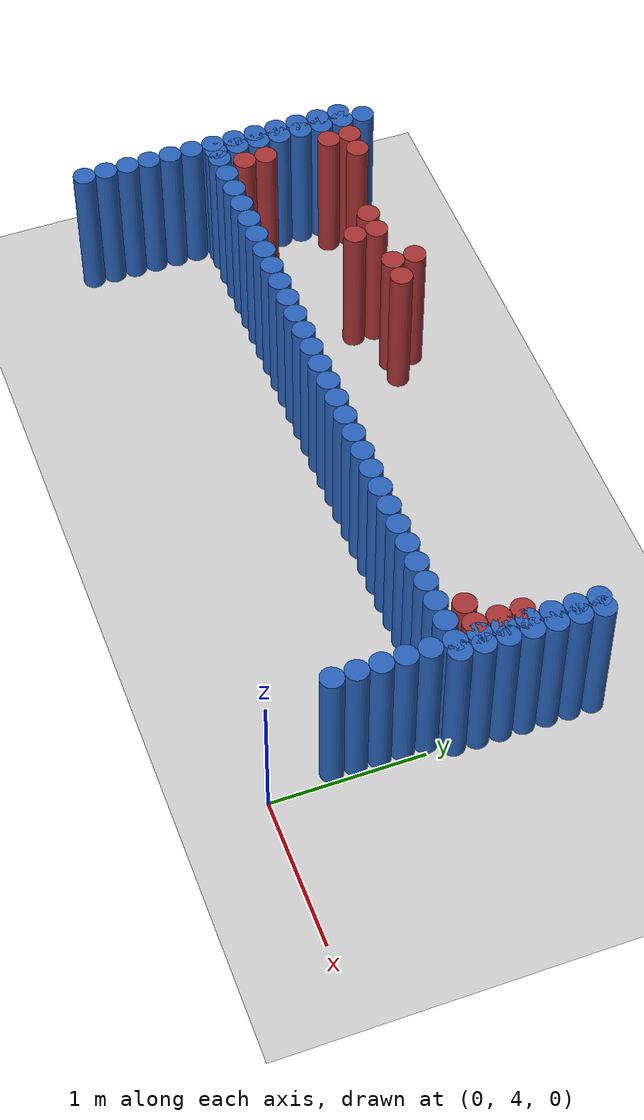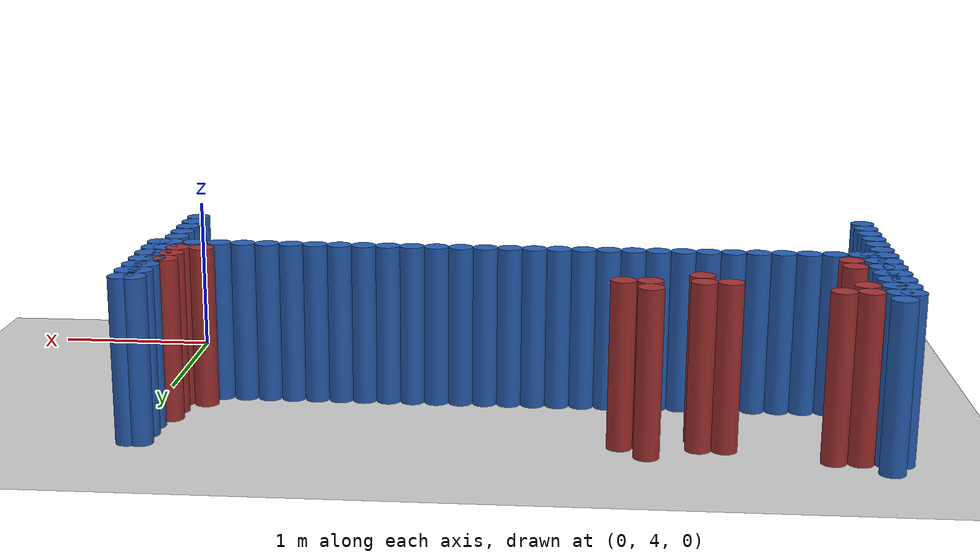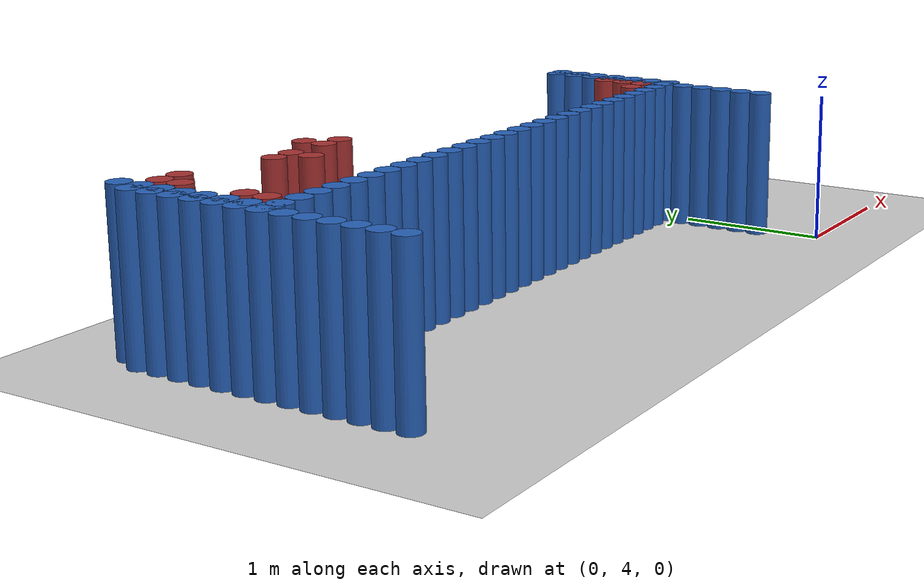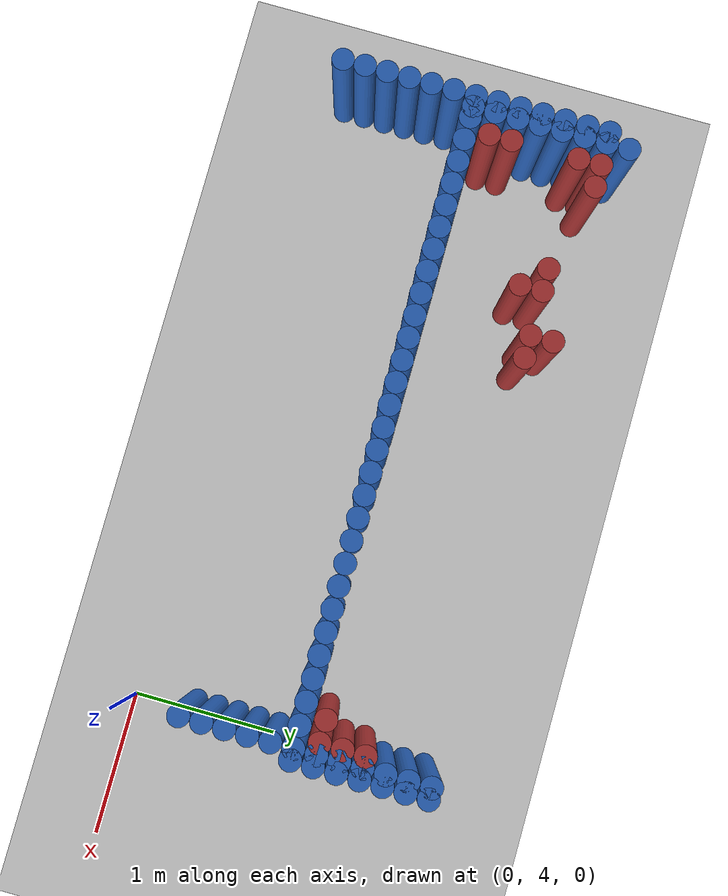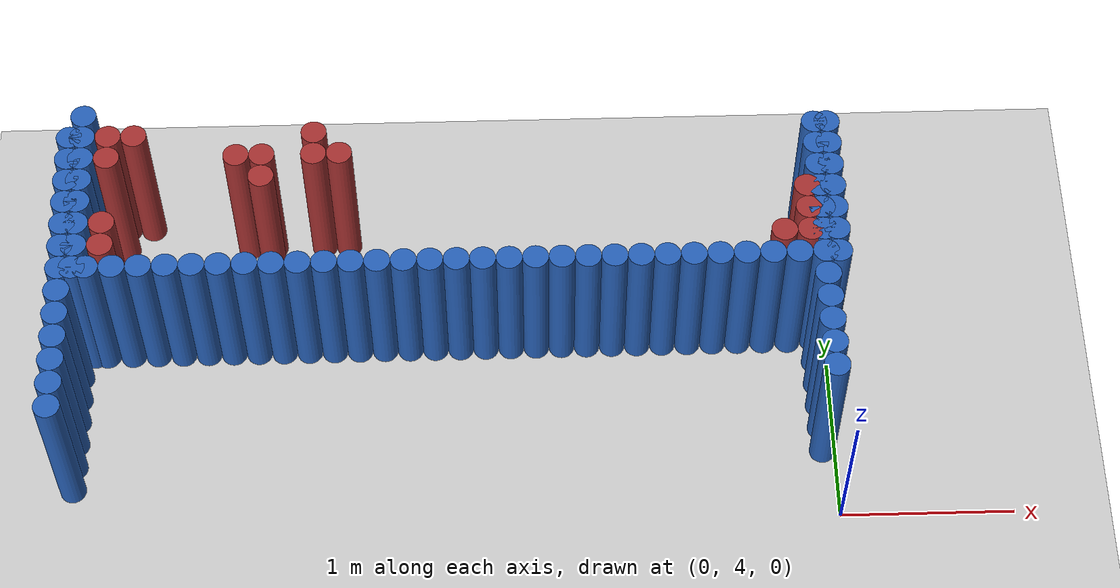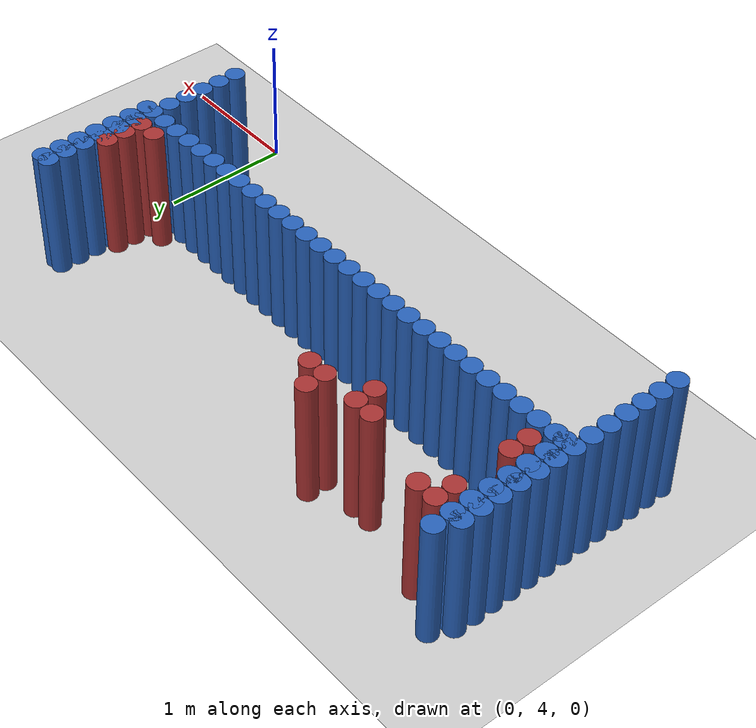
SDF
<sdf version="1.6">
 <world name="barn_world">
  <model name="ground_plane">
   <static>1</static>
   <link name="link">
    <collision name="collision">
     <geometry><plane><normal>0 0 1</normal><size>100 100</size></plane></geometry>
    </collision>
    <visual name="visual">
     <geometry><plane><normal>0 0 1</normal><size>100 100</size></plane></geometry>
     <material>
      <script><uri>file://media/materials/scripts/gazebo.material</uri><name>Gazebo/Grey</name></script>
     </material>
    </visual>
   </link>
  </model>
  <model name="unit_cylinder_85">
   <static>1</static>
   <pose>-4.4250 4.2750 0.5 0 0 0</pose>
   <link name="link">
    <collision name="collision">
     <geometry><cylinder><radius>0.075</radius><length>1</length></cylinder></geometry>
    </collision>
    <visual name="visual">
     <geometry><cylinder><radius>0.075</radius><length>1</length></cylinder></geometry>
     <material><ambient>0.152 0.379 0.72 1</ambient><diffuse>0.152 0.379 0.72 1</diffuse></material>
    </visual>
   </link>
  </model>
  <model name="unit_cylinder_86">
   <static>1</static>
   <pose>-0.0750 4.4250 0.5 0 0 0</pose>
   <link name="link">
    <collision name="collision">
     <geometry><cylinder><radius>0.075</radius><length>1</length></cylinder></geometry>
    </collision>
    <visual name="visual">
     <geometry><cylinder><radius>0.075</radius><length>1</length></cylinder></geometry>
     <material><ambient>0.152 0.379 0.72 1</ambient><diffuse>0.152 0.379 0.72 1</diffuse></material>
    </visual>
   </link>
  </model>
  <model name="unit_cylinder_87">
   <static>1</static>
   <pose>-4.4250 4.4250 0.5 0 0 0</pose>
   <link name="link">
    <collision name="collision">
     <geometry><cylinder><radius>0.075</radius><length>1</length></cylinder></geometry>
    </collision>
    <visual name="visual">
     <geometry><cylinder><radius>0.075</radius><length>1</length></cylinder></geometry>
     <material><ambient>0.152 0.379 0.72 1</ambient><diffuse>0.152 0.379 0.72 1</diffuse></material>
    </visual>
   </link>
  </model>
  <model name="unit_cylinder_88">
   <static>1</static>
   <pose>-0.0750 4.5750 0.5 0 0 0</pose>
   <link name="link">
    <collision name="collision">
     <geometry><cylinder><radius>0.075</radius><length>1</length></cylinder></geometry>
    </collision>
    <visual name="visual">
     <geometry><cylinder><radius>0.075</radius><length>1</length></cylinder></geometry>
     <material><ambient>0.152 0.379 0.72 1</ambient><diffuse>0.152 0.379 0.72 1</diffuse></material>
    </visual>
   </link>
  </model>
  <model name="unit_cylinder_89">
   <static>1</static>
   <pose>-4.4250 4.5750 0.5 0 0 0</pose>
   <link name="link">
    <collision name="collision">
     <geometry><cylinder><radius>0.075</radius><length>1</length></cylinder></geometry>
    </collision>
    <visual name="visual">
     <geometry><cylinder><radius>0.075</radius><length>1</length></cylinder></geometry>
     <material><ambient>0.152 0.379 0.72 1</ambient><diffuse>0.152 0.379 0.72 1</diffuse></material>
    </visual>
   </link>
  </model>
  <model name="unit_cylinder_90">
   <static>1</static>
   <pose>-0.0750 4.7250 0.5 0 0 0</pose>
   <link name="link">
    <collision name="collision">
     <geometry><cylinder><radius>0.075</radius><length>1</length></cylinder></geometry>
    </collision>
    <visual name="visual">
     <geometry><cylinder><radius>0.075</radius><length>1</length></cylinder></geometry>
     <material><ambient>0.152 0.379 0.72 1</ambient><diffuse>0.152 0.379 0.72 1</diffuse></material>
    </visual>
   </link>
  </model>
  <model name="unit_cylinder_91">
   <static>1</static>
   <pose>-4.4250 4.7250 0.5 0 0 0</pose>
   <link name="link">
    <collision name="collision">
     <geometry><cylinder><radius>0.075</radius><length>1</length></cylinder></geometry>
    </collision>
    <visual name="visual">
     <geometry><cylinder><radius>0.075</radius><length>1</length></cylinder></geometry>
     <material><ambient>0.152 0.379 0.72 1</ambient><diffuse>0.152 0.379 0.72 1</diffuse></material>
    </visual>
   </link>
  </model>
  <model name="unit_cylinder_92">
   <static>1</static>
   <pose>-0.0750 4.8750 0.5 0 0 0</pose>
   <link name="link">
    <collision name="collision">
     <geometry><cylinder><radius>0.075</radius><length>1</length></cylinder></geometry>
    </collision>
    <visual name="visual">
     <geometry><cylinder><radius>0.075</radius><length>1</length></cylinder></geometry>
     <material><ambient>0.152 0.379 0.72 1</ambient><diffuse>0.152 0.379 0.72 1</diffuse></material>
    </visual>
   </link>
  </model>
  <model name="unit_cylinder_93">
   <static>1</static>
   <pose>-4.4250 4.8750 0.5 0 0 0</pose>
   <link name="link">
    <collision name="collision">
     <geometry><cylinder><radius>0.075</radius><length>1</length></cylinder></geometry>
    </collision>
    <visual name="visual">
     <geometry><cylinder><radius>0.075</radius><length>1</length></cylinder></geometry>
     <material><ambient>0.152 0.379 0.72 1</ambient><diffuse>0.152 0.379 0.72 1</diffuse></material>
    </visual>
   </link>
  </model>
  <model name="unit_cylinder_94">
   <static>1</static>
   <pose>-0.0750 5.0250 0.5 0 0 0</pose>
   <link name="link">
    <collision name="collision">
     <geometry><cylinder><radius>0.075</radius><length>1</length></cylinder></geometry>
    </collision>
    <visual name="visual">
     <geometry><cylinder><radius>0.075</radius><length>1</length></cylinder></geometry>
     <material><ambient>0.152 0.379 0.72 1</ambient><diffuse>0.152 0.379 0.72 1</diffuse></material>
    </visual>
   </link>
  </model>
  <model name="unit_cylinder_95">
   <static>1</static>
   <pose>-4.4250 5.0250 0.5 0 0 0</pose>
   <link name="link">
    <collision name="collision">
     <geometry><cylinder><radius>0.075</radius><length>1</length></cylinder></geometry>
    </collision>
    <visual name="visual">
     <geometry><cylinder><radius>0.075</radius><length>1</length></cylinder></geometry>
     <material><ambient>0.152 0.379 0.72 1</ambient><diffuse>0.152 0.379 0.72 1</diffuse></material>
    </visual>
   </link>
  </model>
  <model name="unit_cylinder_96">
   <static>1</static>
   <pose>-0.0750 5.1750 0.5 0 0 0</pose>
   <link name="link">
    <collision name="collision">
     <geometry><cylinder><radius>0.075</radius><length>1</length></cylinder></geometry>
    </collision>
    <visual name="visual">
     <geometry><cylinder><radius>0.075</radius><length>1</length></cylinder></geometry>
     <material><ambient>0.152 0.379 0.72 1</ambient><diffuse>0.152 0.379 0.72 1</diffuse></material>
    </visual>
   </link>
  </model>
  <model name="unit_cylinder_97">
   <static>1</static>
   <pose>-0.2250 5.1750 0.5 0 0 0</pose>
   <link name="link">
    <collision name="collision">
     <geometry><cylinder><radius>0.075</radius><length>1</length></cylinder></geometry>
    </collision>
    <visual name="visual">
     <geometry><cylinder><radius>0.075</radius><length>1</length></cylinder></geometry>
     <material><ambient>0.152 0.379 0.72 1</ambient><diffuse>0.152 0.379 0.72 1</diffuse></material>
    </visual>
   </link>
  </model>
  <model name="unit_cylinder_98">
   <static>1</static>
   <pose>-0.3750 5.1750 0.5 0 0 0</pose>
   <link name="link">
    <collision name="collision">
     <geometry><cylinder><radius>0.075</radius><length>1</length></cylinder></geometry>
    </collision>
    <visual name="visual">
     <geometry><cylinder><radius>0.075</radius><length>1</length></cylinder></geometry>
     <material><ambient>0.152 0.379 0.72 1</ambient><diffuse>0.152 0.379 0.72 1</diffuse></material>
    </visual>
   </link>
  </model>
  <model name="unit_cylinder_99">
   <static>1</static>
   <pose>-0.5250 5.1750 0.5 0 0 0</pose>
   <link name="link">
    <collision name="collision">
     <geometry><cylinder><radius>0.075</radius><length>1</length></cylinder></geometry>
    </collision>
    <visual name="visual">
     <geometry><cylinder><radius>0.075</radius><length>1</length></cylinder></geometry>
     <material><ambient>0.152 0.379 0.72 1</ambient><diffuse>0.152 0.379 0.72 1</diffuse></material>
    </visual>
   </link>
  </model>
  <model name="unit_cylinder_100">
   <static>1</static>
   <pose>-0.6750 5.1750 0.5 0 0 0</pose>
   <link name="link">
    <collision name="collision">
     <geometry><cylinder><radius>0.075</radius><length>1</length></cylinder></geometry>
    </collision>
    <visual name="visual">
     <geometry><cylinder><radius>0.075</radius><length>1</length></cylinder></geometry>
     <material><ambient>0.152 0.379 0.72 1</ambient><diffuse>0.152 0.379 0.72 1</diffuse></material>
    </visual>
   </link>
  </model>
  <model name="unit_cylinder_101">
   <static>1</static>
   <pose>-0.8250 5.1750 0.5 0 0 0</pose>
   <link name="link">
    <collision name="collision">
     <geometry><cylinder><radius>0.075</radius><length>1</length></cylinder></geometry>
    </collision>
    <visual name="visual">
     <geometry><cylinder><radius>0.075</radius><length>1</length></cylinder></geometry>
     <material><ambient>0.152 0.379 0.72 1</ambient><diffuse>0.152 0.379 0.72 1</diffuse></material>
    </visual>
   </link>
  </model>
  <model name="unit_cylinder_102">
   <static>1</static>
   <pose>-0.9750 5.1750 0.5 0 0 0</pose>
   <link name="link">
    <collision name="collision">
     <geometry><cylinder><radius>0.075</radius><length>1</length></cylinder></geometry>
    </collision>
    <visual name="visual">
     <geometry><cylinder><radius>0.075</radius><length>1</length></cylinder></geometry>
     <material><ambient>0.152 0.379 0.72 1</ambient><diffuse>0.152 0.379 0.72 1</diffuse></material>
    </visual>
   </link>
  </model>
  <model name="unit_cylinder_103">
   <static>1</static>
   <pose>-1.1250 5.1750 0.5 0 0 0</pose>
   <link name="link">
    <collision name="collision">
     <geometry><cylinder><radius>0.075</radius><length>1</length></cylinder></geometry>
    </collision>
    <visual name="visual">
     <geometry><cylinder><radius>0.075</radius><length>1</length></cylinder></geometry>
     <material><ambient>0.152 0.379 0.72 1</ambient><diffuse>0.152 0.379 0.72 1</diffuse></material>
    </visual>
   </link>
  </model>
  <model name="unit_cylinder_104">
   <static>1</static>
   <pose>-1.2750 5.1750 0.5 0 0 0</pose>
   <link name="link">
    <collision name="collision">
     <geometry><cylinder><radius>0.075</radius><length>1</length></cylinder></geometry>
    </collision>
    <visual name="visual">
     <geometry><cylinder><radius>0.075</radius><length>1</length></cylinder></geometry>
     <material><ambient>0.152 0.379 0.72 1</ambient><diffuse>0.152 0.379 0.72 1</diffuse></material>
    </visual>
   </link>
  </model>
  <model name="unit_cylinder_105">
   <static>1</static>
   <pose>-1.4250 5.1750 0.5 0 0 0</pose>
   <link name="link">
    <collision name="collision">
     <geometry><cylinder><radius>0.075</radius><length>1</length></cylinder></geometry>
    </collision>
    <visual name="visual">
     <geometry><cylinder><radius>0.075</radius><length>1</length></cylinder></geometry>
     <material><ambient>0.152 0.379 0.72 1</ambient><diffuse>0.152 0.379 0.72 1</diffuse></material>
    </visual>
   </link>
  </model>
  <model name="unit_cylinder_106">
   <static>1</static>
   <pose>-1.5750 5.1750 0.5 0 0 0</pose>
   <link name="link">
    <collision name="collision">
     <geometry><cylinder><radius>0.075</radius><length>1</length></cylinder></geometry>
    </collision>
    <visual name="visual">
     <geometry><cylinder><radius>0.075</radius><length>1</length></cylinder></geometry>
     <material><ambient>0.152 0.379 0.72 1</ambient><diffuse>0.152 0.379 0.72 1</diffuse></material>
    </visual>
   </link>
  </model>
  <model name="unit_cylinder_107">
   <static>1</static>
   <pose>-1.7250 5.1750 0.5 0 0 0</pose>
   <link name="link">
    <collision name="collision">
     <geometry><cylinder><radius>0.075</radius><length>1</length></cylinder></geometry>
    </collision>
    <visual name="visual">
     <geometry><cylinder><radius>0.075</radius><length>1</length></cylinder></geometry>
     <material><ambient>0.152 0.379 0.72 1</ambient><diffuse>0.152 0.379 0.72 1</diffuse></material>
    </visual>
   </link>
  </model>
  <model name="unit_cylinder_108">
   <static>1</static>
   <pose>-1.8750 5.1750 0.5 0 0 0</pose>
   <link name="link">
    <collision name="collision">
     <geometry><cylinder><radius>0.075</radius><length>1</length></cylinder></geometry>
    </collision>
    <visual name="visual">
     <geometry><cylinder><radius>0.075</radius><length>1</length></cylinder></geometry>
     <material><ambient>0.152 0.379 0.72 1</ambient><diffuse>0.152 0.379 0.72 1</diffuse></material>
    </visual>
   </link>
  </model>
  <model name="unit_cylinder_109">
   <static>1</static>
   <pose>-2.0250 5.1750 0.5 0 0 0</pose>
   <link name="link">
    <collision name="collision">
     <geometry><cylinder><radius>0.075</radius><length>1</length></cylinder></geometry>
    </collision>
    <visual name="visual">
     <geometry><cylinder><radius>0.075</radius><length>1</length></cylinder></geometry>
     <material><ambient>0.152 0.379 0.72 1</ambient><diffuse>0.152 0.379 0.72 1</diffuse></material>
    </visual>
   </link>
  </model>
  <model name="unit_cylinder_110">
   <static>1</static>
   <pose>-2.1750 5.1750 0.5 0 0 0</pose>
   <link name="link">
    <collision name="collision">
     <geometry><cylinder><radius>0.075</radius><length>1</length></cylinder></geometry>
    </collision>
    <visual name="visual">
     <geometry><cylinder><radius>0.075</radius><length>1</length></cylinder></geometry>
     <material><ambient>0.152 0.379 0.72 1</ambient><diffuse>0.152 0.379 0.72 1</diffuse></material>
    </visual>
   </link>
  </model>
  <model name="unit_cylinder_111">
   <static>1</static>
   <pose>-2.3250 5.1750 0.5 0 0 0</pose>
   <link name="link">
    <collision name="collision">
     <geometry><cylinder><radius>0.075</radius><length>1</length></cylinder></geometry>
    </collision>
    <visual name="visual">
     <geometry><cylinder><radius>0.075</radius><length>1</length></cylinder></geometry>
     <material><ambient>0.152 0.379 0.72 1</ambient><diffuse>0.152 0.379 0.72 1</diffuse></material>
    </visual>
   </link>
  </model>
  <model name="unit_cylinder_112">
   <static>1</static>
   <pose>-2.4750 5.1750 0.5 0 0 0</pose>
   <link name="link">
    <collision name="collision">
     <geometry><cylinder><radius>0.075</radius><length>1</length></cylinder></geometry>
    </collision>
    <visual name="visual">
     <geometry><cylinder><radius>0.075</radius><length>1</length></cylinder></geometry>
     <material><ambient>0.152 0.379 0.72 1</ambient><diffuse>0.152 0.379 0.72 1</diffuse></material>
    </visual>
   </link>
  </model>
  <model name="unit_cylinder_113">
   <static>1</static>
   <pose>-2.6250 5.1750 0.5 0 0 0</pose>
   <link name="link">
    <collision name="collision">
     <geometry><cylinder><radius>0.075</radius><length>1</length></cylinder></geometry>
    </collision>
    <visual name="visual">
     <geometry><cylinder><radius>0.075</radius><length>1</length></cylinder></geometry>
     <material><ambient>0.152 0.379 0.72 1</ambient><diffuse>0.152 0.379 0.72 1</diffuse></material>
    </visual>
   </link>
  </model>
  <model name="unit_cylinder_114">
   <static>1</static>
   <pose>-2.7750 5.1750 0.5 0 0 0</pose>
   <link name="link">
    <collision name="collision">
     <geometry><cylinder><radius>0.075</radius><length>1</length></cylinder></geometry>
    </collision>
    <visual name="visual">
     <geometry><cylinder><radius>0.075</radius><length>1</length></cylinder></geometry>
     <material><ambient>0.152 0.379 0.72 1</ambient><diffuse>0.152 0.379 0.72 1</diffuse></material>
    </visual>
   </link>
  </model>
  <model name="unit_cylinder_115">
   <static>1</static>
   <pose>-2.9250 5.1750 0.5 0 0 0</pose>
   <link name="link">
    <collision name="collision">
     <geometry><cylinder><radius>0.075</radius><length>1</length></cylinder></geometry>
    </collision>
    <visual name="visual">
     <geometry><cylinder><radius>0.075</radius><length>1</length></cylinder></geometry>
     <material><ambient>0.152 0.379 0.72 1</ambient><diffuse>0.152 0.379 0.72 1</diffuse></material>
    </visual>
   </link>
  </model>
  <model name="unit_cylinder_116">
   <static>1</static>
   <pose>-3.0750 5.1750 0.5 0 0 0</pose>
   <link name="link">
    <collision name="collision">
     <geometry><cylinder><radius>0.075</radius><length>1</length></cylinder></geometry>
    </collision>
    <visual name="visual">
     <geometry><cylinder><radius>0.075</radius><length>1</length></cylinder></geometry>
     <material><ambient>0.152 0.379 0.72 1</ambient><diffuse>0.152 0.379 0.72 1</diffuse></material>
    </visual>
   </link>
  </model>
  <model name="unit_cylinder_117">
   <static>1</static>
   <pose>-3.2250 5.1750 0.5 0 0 0</pose>
   <link name="link">
    <collision name="collision">
     <geometry><cylinder><radius>0.075</radius><length>1</length></cylinder></geometry>
    </collision>
    <visual name="visual">
     <geometry><cylinder><radius>0.075</radius><length>1</length></cylinder></geometry>
     <material><ambient>0.152 0.379 0.72 1</ambient><diffuse>0.152 0.379 0.72 1</diffuse></material>
    </visual>
   </link>
  </model>
  <model name="unit_cylinder_118">
   <static>1</static>
   <pose>-3.3750 5.1750 0.5 0 0 0</pose>
   <link name="link">
    <collision name="collision">
     <geometry><cylinder><radius>0.075</radius><length>1</length></cylinder></geometry>
    </collision>
    <visual name="visual">
     <geometry><cylinder><radius>0.075</radius><length>1</length></cylinder></geometry>
     <material><ambient>0.152 0.379 0.72 1</ambient><diffuse>0.152 0.379 0.72 1</diffuse></material>
    </visual>
   </link>
  </model>
  <model name="unit_cylinder_119">
   <static>1</static>
   <pose>-3.5250 5.1750 0.5 0 0 0</pose>
   <link name="link">
    <collision name="collision">
     <geometry><cylinder><radius>0.075</radius><length>1</length></cylinder></geometry>
    </collision>
    <visual name="visual">
     <geometry><cylinder><radius>0.075</radius><length>1</length></cylinder></geometry>
     <material><ambient>0.152 0.379 0.72 1</ambient><diffuse>0.152 0.379 0.72 1</diffuse></material>
    </visual>
   </link>
  </model>
  <model name="unit_cylinder_120">
   <static>1</static>
   <pose>-3.6750 5.1750 0.5 0 0 0</pose>
   <link name="link">
    <collision name="collision">
     <geometry><cylinder><radius>0.075</radius><length>1</length></cylinder></geometry>
    </collision>
    <visual name="visual">
     <geometry><cylinder><radius>0.075</radius><length>1</length></cylinder></geometry>
     <material><ambient>0.152 0.379 0.72 1</ambient><diffuse>0.152 0.379 0.72 1</diffuse></material>
    </visual>
   </link>
  </model>
  <model name="unit_cylinder_121">
   <static>1</static>
   <pose>-3.8250 5.1750 0.5 0 0 0</pose>
   <link name="link">
    <collision name="collision">
     <geometry><cylinder><radius>0.075</radius><length>1</length></cylinder></geometry>
    </collision>
    <visual name="visual">
     <geometry><cylinder><radius>0.075</radius><length>1</length></cylinder></geometry>
     <material><ambient>0.152 0.379 0.72 1</ambient><diffuse>0.152 0.379 0.72 1</diffuse></material>
    </visual>
   </link>
  </model>
  <model name="unit_cylinder_122">
   <static>1</static>
   <pose>-3.9750 5.1750 0.5 0 0 0</pose>
   <link name="link">
    <collision name="collision">
     <geometry><cylinder><radius>0.075</radius><length>1</length></cylinder></geometry>
    </collision>
    <visual name="visual">
     <geometry><cylinder><radius>0.075</radius><length>1</length></cylinder></geometry>
     <material><ambient>0.152 0.379 0.72 1</ambient><diffuse>0.152 0.379 0.72 1</diffuse></material>
    </visual>
   </link>
  </model>
  <model name="unit_cylinder_123">
   <static>1</static>
   <pose>-4.1250 5.1750 0.5 0 0 0</pose>
   <link name="link">
    <collision name="collision">
     <geometry><cylinder><radius>0.075</radius><length>1</length></cylinder></geometry>
    </collision>
    <visual name="visual">
     <geometry><cylinder><radius>0.075</radius><length>1</length></cylinder></geometry>
     <material><ambient>0.152 0.379 0.72 1</ambient><diffuse>0.152 0.379 0.72 1</diffuse></material>
    </visual>
   </link>
  </model>
  <model name="unit_cylinder_124">
   <static>1</static>
   <pose>-4.2750 5.1750 0.5 0 0 0</pose>
   <link name="link">
    <collision name="collision">
     <geometry><cylinder><radius>0.075</radius><length>1</length></cylinder></geometry>
    </collision>
    <visual name="visual">
     <geometry><cylinder><radius>0.075</radius><length>1</length></cylinder></geometry>
     <material><ambient>0.152 0.379 0.72 1</ambient><diffuse>0.152 0.379 0.72 1</diffuse></material>
    </visual>
   </link>
  </model>
  <model name="unit_cylinder_125">
   <static>1</static>
   <pose>-4.4250 5.1750 0.5 0 0 0</pose>
   <link name="link">
    <collision name="collision">
     <geometry><cylinder><radius>0.075</radius><length>1</length></cylinder></geometry>
    </collision>
    <visual name="visual">
     <geometry><cylinder><radius>0.075</radius><length>1</length></cylinder></geometry>
     <material><ambient>0.152 0.379 0.72 1</ambient><diffuse>0.152 0.379 0.72 1</diffuse></material>
    </visual>
   </link>
  </model>
  <model name="unit_cylinder_126">
   <static>1</static>
   <pose>-4.3500 5.1750 0.5 0 0 0</pose>
   <link name="link">
    <collision name="collision">
     <geometry><cylinder><radius>0.075</radius><length>1</length></cylinder></geometry>
    </collision>
    <visual name="visual">
     <geometry><cylinder><radius>0.075</radius><length>1</length></cylinder></geometry>
     <material><ambient>0.152 0.379 0.72 1</ambient><diffuse>0.152 0.379 0.72 1</diffuse></material>
    </visual>
   </link>
  </model>
  <model name="unit_cylinder_127">
   <static>1</static>
   <pose>-4.3500 5.3250 0.5 0 0 0</pose>
   <link name="link">
    <collision name="collision">
     <geometry><cylinder><radius>0.075</radius><length>1</length></cylinder></geometry>
    </collision>
    <visual name="visual">
     <geometry><cylinder><radius>0.075</radius><length>1</length></cylinder></geometry>
     <material><ambient>0.152 0.379 0.72 1</ambient><diffuse>0.152 0.379 0.72 1</diffuse></material>
    </visual>
   </link>
  </model>
  <model name="unit_cylinder_128">
   <static>1</static>
   <pose>-4.3500 5.4750 0.5 0 0 0</pose>
   <link name="link">
    <collision name="collision">
     <geometry><cylinder><radius>0.075</radius><length>1</length></cylinder></geometry>
    </collision>
    <visual name="visual">
     <geometry><cylinder><radius>0.075</radius><length>1</length></cylinder></geometry>
     <material><ambient>0.152 0.379 0.72 1</ambient><diffuse>0.152 0.379 0.72 1</diffuse></material>
    </visual>
   </link>
  </model>
  <model name="unit_cylinder_129">
   <static>1</static>
   <pose>-4.3500 5.6250 0.5 0 0 0</pose>
   <link name="link">
    <collision name="collision">
     <geometry><cylinder><radius>0.075</radius><length>1</length></cylinder></geometry>
    </collision>
    <visual name="visual">
     <geometry><cylinder><radius>0.075</radius><length>1</length></cylinder></geometry>
     <material><ambient>0.152 0.379 0.72 1</ambient><diffuse>0.152 0.379 0.72 1</diffuse></material>
    </visual>
   </link>
  </model>
  <model name="unit_cylinder_130">
   <static>1</static>
   <pose>-4.3500 5.7750 0.5 0 0 0</pose>
   <link name="link">
    <collision name="collision">
     <geometry><cylinder><radius>0.075</radius><length>1</length></cylinder></geometry>
    </collision>
    <visual name="visual">
     <geometry><cylinder><radius>0.075</radius><length>1</length></cylinder></geometry>
     <material><ambient>0.152 0.379 0.72 1</ambient><diffuse>0.152 0.379 0.72 1</diffuse></material>
    </visual>
   </link>
  </model>
  <model name="unit_cylinder_131">
   <static>1</static>
   <pose>-4.3500 5.9250 0.5 0 0 0</pose>
   <link name="link">
    <collision name="collision">
     <geometry><cylinder><radius>0.075</radius><length>1</length></cylinder></geometry>
    </collision>
    <visual name="visual">
     <geometry><cylinder><radius>0.075</radius><length>1</length></cylinder></geometry>
     <material><ambient>0.152 0.379 0.72 1</ambient><diffuse>0.152 0.379 0.72 1</diffuse></material>
    </visual>
   </link>
  </model>
  <model name="unit_cylinder_132">
   <static>1</static>
   <pose>-4.3500 6.0750 0.5 0 0 0</pose>
   <link name="link">
    <collision name="collision">
     <geometry><cylinder><radius>0.075</radius><length>1</length></cylinder></geometry>
    </collision>
    <visual name="visual">
     <geometry><cylinder><radius>0.075</radius><length>1</length></cylinder></geometry>
     <material><ambient>0.152 0.379 0.72 1</ambient><diffuse>0.152 0.379 0.72 1</diffuse></material>
    </visual>
   </link>
  </model>
  <model name="unit_cylinder_133">
   <static>1</static>
   <pose>-4.3500 6.2250 0.5 0 0 0</pose>
   <link name="link">
    <collision name="collision">
     <geometry><cylinder><radius>0.075</radius><length>1</length></cylinder></geometry>
    </collision>
    <visual name="visual">
     <geometry><cylinder><radius>0.075</radius><length>1</length></cylinder></geometry>
     <material><ambient>0.152 0.379 0.72 1</ambient><diffuse>0.152 0.379 0.72 1</diffuse></material>
    </visual>
   </link>
  </model>
  <model name="unit_cylinder_156">
   <static>1</static>
   <pose>-4.2000 5.3250 0.5 0 0 0</pose>
   <link name="link">
    <collision name="collision">
     <geometry><cylinder><radius>0.075</radius><length>1</length></cylinder></geometry>
    </collision>
    <visual name="visual">
     <geometry><cylinder><radius>0.075</radius><length>1</length></cylinder></geometry>
     <material><ambient>0.648 0.192 0.192 1</ambient><diffuse>0.648 0.192 0.192 1</diffuse></material>
    </visual>
   </link>
  </model>
  <model name="unit_cylinder_157">
   <static>1</static>
   <pose>-4.2000 5.4750 0.5 0 0 0</pose>
   <link name="link">
    <collision name="collision">
     <geometry><cylinder><radius>0.075</radius><length>1</length></cylinder></geometry>
    </collision>
    <visual name="visual">
     <geometry><cylinder><radius>0.075</radius><length>1</length></cylinder></geometry>
     <material><ambient>0.648 0.192 0.192 1</ambient><diffuse>0.648 0.192 0.192 1</diffuse></material>
    </visual>
   </link>
  </model>
  <model name="unit_cylinder_158">
   <static>1</static>
   <pose>-4.2000 5.9250 0.5 0 0 0</pose>
   <link name="link">
    <collision name="collision">
     <geometry><cylinder><radius>0.075</radius><length>1</length></cylinder></geometry>
    </collision>
    <visual name="visual">
     <geometry><cylinder><radius>0.075</radius><length>1</length></cylinder></geometry>
     <material><ambient>0.648 0.192 0.192 1</ambient><diffuse>0.648 0.192 0.192 1</diffuse></material>
    </visual>
   </link>
  </model>
  <model name="unit_cylinder_159">
   <static>1</static>
   <pose>-4.2000 6.0750 0.5 0 0 0</pose>
   <link name="link">
    <collision name="collision">
     <geometry><cylinder><radius>0.075</radius><length>1</length></cylinder></geometry>
    </collision>
    <visual name="visual">
     <geometry><cylinder><radius>0.075</radius><length>1</length></cylinder></geometry>
     <material><ambient>0.648 0.192 0.192 1</ambient><diffuse>0.648 0.192 0.192 1</diffuse></material>
    </visual>
   </link>
  </model>
  <model name="unit_cylinder_163">
   <static>1</static>
   <pose>-4.0500 6.0750 0.5 0 0 0</pose>
   <link name="link">
    <collision name="collision">
     <geometry><cylinder><radius>0.075</radius><length>1</length></cylinder></geometry>
    </collision>
    <visual name="visual">
     <geometry><cylinder><radius>0.075</radius><length>1</length></cylinder></geometry>
     <material><ambient>0.648 0.192 0.192 1</ambient><diffuse>0.648 0.192 0.192 1</diffuse></material>
    </visual>
   </link>
  </model>
  <model name="unit_cylinder_164">
   <static>1</static>
   <pose>-3.4500 5.9250 0.5 0 0 0</pose>
   <link name="link">
    <collision name="collision">
     <geometry><cylinder><radius>0.075</radius><length>1</length></cylinder></geometry>
    </collision>
    <visual name="visual">
     <geometry><cylinder><radius>0.075</radius><length>1</length></cylinder></geometry>
     <material><ambient>0.648 0.192 0.192 1</ambient><diffuse>0.648 0.192 0.192 1</diffuse></material>
    </visual>
   </link>
  </model>
  <model name="unit_cylinder_166">
   <static>1</static>
   <pose>-3.3000 5.7750 0.5 0 0 0</pose>
   <link name="link">
    <collision name="collision">
     <geometry><cylinder><radius>0.075</radius><length>1</length></cylinder></geometry>
    </collision>
    <visual name="visual">
     <geometry><cylinder><radius>0.075</radius><length>1</length></cylinder></geometry>
     <material><ambient>0.648 0.192 0.192 1</ambient><diffuse>0.648 0.192 0.192 1</diffuse></material>
    </visual>
   </link>
  </model>
  <model name="unit_cylinder_167">
   <static>1</static>
   <pose>-3.3000 5.9250 0.5 0 0 0</pose>
   <link name="link">
    <collision name="collision">
     <geometry><cylinder><radius>0.075</radius><length>1</length></cylinder></geometry>
    </collision>
    <visual name="visual">
     <geometry><cylinder><radius>0.075</radius><length>1</length></cylinder></geometry>
     <material><ambient>0.648 0.192 0.192 1</ambient><diffuse>0.648 0.192 0.192 1</diffuse></material>
    </visual>
   </link>
  </model>
  <model name="unit_cylinder_171">
   <static>1</static>
   <pose>-3.0000 5.9250 0.5 0 0 0</pose>
   <link name="link">
    <collision name="collision">
     <geometry><cylinder><radius>0.075</radius><length>1</length></cylinder></geometry>
    </collision>
    <visual name="visual">
     <geometry><cylinder><radius>0.075</radius><length>1</length></cylinder></geometry>
     <material><ambient>0.648 0.192 0.192 1</ambient><diffuse>0.648 0.192 0.192 1</diffuse></material>
    </visual>
   </link>
  </model>
  <model name="unit_cylinder_172">
   <static>1</static>
   <pose>-3.0000 6.0750 0.5 0 0 0</pose>
   <link name="link">
    <collision name="collision">
     <geometry><cylinder><radius>0.075</radius><length>1</length></cylinder></geometry>
    </collision>
    <visual name="visual">
     <geometry><cylinder><radius>0.075</radius><length>1</length></cylinder></geometry>
     <material><ambient>0.648 0.192 0.192 1</ambient><diffuse>0.648 0.192 0.192 1</diffuse></material>
    </visual>
   </link>
  </model>
  <model name="unit_cylinder_175">
   <static>1</static>
   <pose>-2.8500 5.9250 0.5 0 0 0</pose>
   <link name="link">
    <collision name="collision">
     <geometry><cylinder><radius>0.075</radius><length>1</length></cylinder></geometry>
    </collision>
    <visual name="visual">
     <geometry><cylinder><radius>0.075</radius><length>1</length></cylinder></geometry>
     <material><ambient>0.648 0.192 0.192 1</ambient><diffuse>0.648 0.192 0.192 1</diffuse></material>
    </visual>
   </link>
  </model>
  <model name="unit_cylinder_201">
   <static>1</static>
   <pose>-0.3000 5.3250 0.5 0 0 0</pose>
   <link name="link">
    <collision name="collision">
     <geometry><cylinder><radius>0.075</radius><length>1</length></cylinder></geometry>
    </collision>
    <visual name="visual">
     <geometry><cylinder><radius>0.075</radius><length>1</length></cylinder></geometry>
     <material><ambient>0.648 0.192 0.192 1</ambient><diffuse>0.648 0.192 0.192 1</diffuse></material>
    </visual>
   </link>
  </model>
  <model name="unit_cylinder_206">
   <static>1</static>
   <pose>-0.1500 5.3250 0.5 0 0 0</pose>
   <link name="link">
    <collision name="collision">
     <geometry><cylinder><radius>0.075</radius><length>1</length></cylinder></geometry>
    </collision>
    <visual name="visual">
     <geometry><cylinder><radius>0.075</radius><length>1</length></cylinder></geometry>
     <material><ambient>0.648 0.192 0.192 1</ambient><diffuse>0.648 0.192 0.192 1</diffuse></material>
    </visual>
   </link>
  </model>
  <model name="unit_cylinder_207">
   <static>1</static>
   <pose>-0.1500 5.4750 0.5 0 0 0</pose>
   <link name="link">
    <collision name="collision">
     <geometry><cylinder><radius>0.075</radius><length>1</length></cylinder></geometry>
    </collision>
    <visual name="visual">
     <geometry><cylinder><radius>0.075</radius><length>1</length></cylinder></geometry>
     <material><ambient>0.648 0.192 0.192 1</ambient><diffuse>0.648 0.192 0.192 1</diffuse></material>
    </visual>
   </link>
  </model>
  <model name="unit_cylinder_208">
   <static>1</static>
   <pose>-0.1500 5.6250 0.5 0 0 0</pose>
   <link name="link">
    <collision name="collision">
     <geometry><cylinder><radius>0.075</radius><length>1</length></cylinder></geometry>
    </collision>
    <visual name="visual">
     <geometry><cylinder><radius>0.075</radius><length>1</length></cylinder></geometry>
     <material><ambient>0.648 0.192 0.192 1</ambient><diffuse>0.648 0.192 0.192 1</diffuse></material>
    </visual>
   </link>
  </model>
  <model name="unit_cylinder_222">
   <static>1</static>
   <pose>0.0000 5.1750 0.5 0 0 0</pose>
   <link name="link">
    <collision name="collision">
     <geometry><cylinder><radius>0.075</radius><length>1</length></cylinder></geometry>
    </collision>
    <visual name="visual">
     <geometry><cylinder><radius>0.075</radius><length>1</length></cylinder></geometry>
     <material><ambient>0.152 0.379 0.72 1</ambient><diffuse>0.152 0.379 0.72 1</diffuse></material>
    </visual>
   </link>
  </model>
  <model name="unit_cylinder_223">
   <static>1</static>
   <pose>0.0000 5.3250 0.5 0 0 0</pose>
   <link name="link">
    <collision name="collision">
     <geometry><cylinder><radius>0.075</radius><length>1</length></cylinder></geometry>
    </collision>
    <visual name="visual">
     <geometry><cylinder><radius>0.075</radius><length>1</length></cylinder></geometry>
     <material><ambient>0.152 0.379 0.72 1</ambient><diffuse>0.152 0.379 0.72 1</diffuse></material>
    </visual>
   </link>
  </model>
  <model name="unit_cylinder_224">
   <static>1</static>
   <pose>0.0000 5.4750 0.5 0 0 0</pose>
   <link name="link">
    <collision name="collision">
     <geometry><cylinder><radius>0.075</radius><length>1</length></cylinder></geometry>
    </collision>
    <visual name="visual">
     <geometry><cylinder><radius>0.075</radius><length>1</length></cylinder></geometry>
     <material><ambient>0.152 0.379 0.72 1</ambient><diffuse>0.152 0.379 0.72 1</diffuse></material>
    </visual>
   </link>
  </model>
  <model name="unit_cylinder_225">
   <static>1</static>
   <pose>0.0000 5.6250 0.5 0 0 0</pose>
   <link name="link">
    <collision name="collision">
     <geometry><cylinder><radius>0.075</radius><length>1</length></cylinder></geometry>
    </collision>
    <visual name="visual">
     <geometry><cylinder><radius>0.075</radius><length>1</length></cylinder></geometry>
     <material><ambient>0.152 0.379 0.72 1</ambient><diffuse>0.152 0.379 0.72 1</diffuse></material>
    </visual>
   </link>
  </model>
  <model name="unit_cylinder_226">
   <static>1</static>
   <pose>0.0000 5.7750 0.5 0 0 0</pose>
   <link name="link">
    <collision name="collision">
     <geometry><cylinder><radius>0.075</radius><length>1</length></cylinder></geometry>
    </collision>
    <visual name="visual">
     <geometry><cylinder><radius>0.075</radius><length>1</length></cylinder></geometry>
     <material><ambient>0.152 0.379 0.72 1</ambient><diffuse>0.152 0.379 0.72 1</diffuse></material>
    </visual>
   </link>
  </model>
  <model name="unit_cylinder_227">
   <static>1</static>
   <pose>0.0000 5.9250 0.5 0 0 0</pose>
   <link name="link">
    <collision name="collision">
     <geometry><cylinder><radius>0.075</radius><length>1</length></cylinder></geometry>
    </collision>
    <visual name="visual">
     <geometry><cylinder><radius>0.075</radius><length>1</length></cylinder></geometry>
     <material><ambient>0.152 0.379 0.72 1</ambient><diffuse>0.152 0.379 0.72 1</diffuse></material>
    </visual>
   </link>
  </model>
  <model name="unit_cylinder_228">
   <static>1</static>
   <pose>0.0000 6.0750 0.5 0 0 0</pose>
   <link name="link">
    <collision name="collision">
     <geometry><cylinder><radius>0.075</radius><length>1</length></cylinder></geometry>
    </collision>
    <visual name="visual">
     <geometry><cylinder><radius>0.075</radius><length>1</length></cylinder></geometry>
     <material><ambient>0.152 0.379 0.72 1</ambient><diffuse>0.152 0.379 0.72 1</diffuse></material>
    </visual>
   </link>
  </model>
  <model name="unit_cylinder_282">
   <static>1</static>
   <pose>-0.0750 5.1750 0.5 0 0 0</pose>
   <link name="link">
    <collision name="collision">
     <geometry><cylinder><radius>0.075</radius><length>1</length></cylinder></geometry>
    </collision>
    <visual name="visual">
     <geometry><cylinder><radius>0.075</radius><length>1</length></cylinder></geometry>
     <material><ambient>0.152 0.379 0.72 1</ambient><diffuse>0.152 0.379 0.72 1</diffuse></material>
    </visual>
   </link>
  </model>
  <model name="unit_cylinder_283">
   <static>1</static>
   <pose>-4.4250 5.1750 0.5 0 0 0</pose>
   <link name="link">
    <collision name="collision">
     <geometry><cylinder><radius>0.075</radius><length>1</length></cylinder></geometry>
    </collision>
    <visual name="visual">
     <geometry><cylinder><radius>0.075</radius><length>1</length></cylinder></geometry>
     <material><ambient>0.152 0.379 0.72 1</ambient><diffuse>0.152 0.379 0.72 1</diffuse></material>
    </visual>
   </link>
  </model>
  <model name="unit_cylinder_284">
   <static>1</static>
   <pose>-0.0750 5.3250 0.5 0 0 0</pose>
   <link name="link">
    <collision name="collision">
     <geometry><cylinder><radius>0.075</radius><length>1</length></cylinder></geometry>
    </collision>
    <visual name="visual">
     <geometry><cylinder><radius>0.075</radius><length>1</length></cylinder></geometry>
     <material><ambient>0.152 0.379 0.72 1</ambient><diffuse>0.152 0.379 0.72 1</diffuse></material>
    </visual>
   </link>
  </model>
  <model name="unit_cylinder_285">
   <static>1</static>
   <pose>-4.4250 5.3250 0.5 0 0 0</pose>
   <link name="link">
    <collision name="collision">
     <geometry><cylinder><radius>0.075</radius><length>1</length></cylinder></geometry>
    </collision>
    <visual name="visual">
     <geometry><cylinder><radius>0.075</radius><length>1</length></cylinder></geometry>
     <material><ambient>0.152 0.379 0.72 1</ambient><diffuse>0.152 0.379 0.72 1</diffuse></material>
    </visual>
   </link>
  </model>
  <model name="unit_cylinder_286">
   <static>1</static>
   <pose>-0.0750 5.4750 0.5 0 0 0</pose>
   <link name="link">
    <collision name="collision">
     <geometry><cylinder><radius>0.075</radius><length>1</length></cylinder></geometry>
    </collision>
    <visual name="visual">
     <geometry><cylinder><radius>0.075</radius><length>1</length></cylinder></geometry>
     <material><ambient>0.152 0.379 0.72 1</ambient><diffuse>0.152 0.379 0.72 1</diffuse></material>
    </visual>
   </link>
  </model>
  <model name="unit_cylinder_287">
   <static>1</static>
   <pose>-4.4250 5.4750 0.5 0 0 0</pose>
   <link name="link">
    <collision name="collision">
     <geometry><cylinder><radius>0.075</radius><length>1</length></cylinder></geometry>
    </collision>
    <visual name="visual">
     <geometry><cylinder><radius>0.075</radius><length>1</length></cylinder></geometry>
     <material><ambient>0.152 0.379 0.72 1</ambient><diffuse>0.152 0.379 0.72 1</diffuse></material>
    </visual>
   </link>
  </model>
  <model name="unit_cylinder_288">
   <static>1</static>
   <pose>-0.0750 5.6250 0.5 0 0 0</pose>
   <link name="link">
    <collision name="collision">
     <geometry><cylinder><radius>0.075</radius><length>1</length></cylinder></geometry>
    </collision>
    <visual name="visual">
     <geometry><cylinder><radius>0.075</radius><length>1</length></cylinder></geometry>
     <material><ambient>0.152 0.379 0.72 1</ambient><diffuse>0.152 0.379 0.72 1</diffuse></material>
    </visual>
   </link>
  </model>
  <model name="unit_cylinder_289">
   <static>1</static>
   <pose>-4.4250 5.6250 0.5 0 0 0</pose>
   <link name="link">
    <collision name="collision">
     <geometry><cylinder><radius>0.075</radius><length>1</length></cylinder></geometry>
    </collision>
    <visual name="visual">
     <geometry><cylinder><radius>0.075</radius><length>1</length></cylinder></geometry>
     <material><ambient>0.152 0.379 0.72 1</ambient><diffuse>0.152 0.379 0.72 1</diffuse></material>
    </visual>
   </link>
  </model>
  <model name="unit_cylinder_290">
   <static>1</static>
   <pose>-0.0750 5.7750 0.5 0 0 0</pose>
   <link name="link">
    <collision name="collision">
     <geometry><cylinder><radius>0.075</radius><length>1</length></cylinder></geometry>
    </collision>
    <visual name="visual">
     <geometry><cylinder><radius>0.075</radius><length>1</length></cylinder></geometry>
     <material><ambient>0.152 0.379 0.72 1</ambient><diffuse>0.152 0.379 0.72 1</diffuse></material>
    </visual>
   </link>
  </model>
  <model name="unit_cylinder_291">
   <static>1</static>
   <pose>-4.4250 5.7750 0.5 0 0 0</pose>
   <link name="link">
    <collision name="collision">
     <geometry><cylinder><radius>0.075</radius><length>1</length></cylinder></geometry>
    </collision>
    <visual name="visual">
     <geometry><cylinder><radius>0.075</radius><length>1</length></cylinder></geometry>
     <material><ambient>0.152 0.379 0.72 1</ambient><diffuse>0.152 0.379 0.72 1</diffuse></material>
    </visual>
   </link>
  </model>
  <model name="unit_cylinder_292">
   <static>1</static>
   <pose>-0.0750 5.9250 0.5 0 0 0</pose>
   <link name="link">
    <collision name="collision">
     <geometry><cylinder><radius>0.075</radius><length>1</length></cylinder></geometry>
    </collision>
    <visual name="visual">
     <geometry><cylinder><radius>0.075</radius><length>1</length></cylinder></geometry>
     <material><ambient>0.152 0.379 0.72 1</ambient><diffuse>0.152 0.379 0.72 1</diffuse></material>
    </visual>
   </link>
  </model>
  <model name="unit_cylinder_293">
   <static>1</static>
   <pose>-4.4250 5.9250 0.5 0 0 0</pose>
   <link name="link">
    <collision name="collision">
     <geometry><cylinder><radius>0.075</radius><length>1</length></cylinder></geometry>
    </collision>
    <visual name="visual">
     <geometry><cylinder><radius>0.075</radius><length>1</length></cylinder></geometry>
     <material><ambient>0.152 0.379 0.72 1</ambient><diffuse>0.152 0.379 0.72 1</diffuse></material>
    </visual>
   </link>
  </model>
  <model name="unit_cylinder_294">
   <static>1</static>
   <pose>-0.0750 6.0750 0.5 0 0 0</pose>
   <link name="link">
    <collision name="collision">
     <geometry><cylinder><radius>0.075</radius><length>1</length></cylinder></geometry>
    </collision>
    <visual name="visual">
     <geometry><cylinder><radius>0.075</radius><length>1</length></cylinder></geometry>
     <material><ambient>0.152 0.379 0.72 1</ambient><diffuse>0.152 0.379 0.72 1</diffuse></material>
    </visual>
   </link>
  </model>
  <model name="unit_cylinder_295">
   <static>1</static>
   <pose>-4.4250 6.0750 0.5 0 0 0</pose>
   <link name="link">
    <collision name="collision">
     <geometry><cylinder><radius>0.075</radius><length>1</length></cylinder></geometry>
    </collision>
    <visual name="visual">
     <geometry><cylinder><radius>0.075</radius><length>1</length></cylinder></geometry>
     <material><ambient>0.152 0.379 0.72 1</ambient><diffuse>0.152 0.379 0.72 1</diffuse></material>
    </visual>
   </link>
  </model>
 </world>
</sdf>
